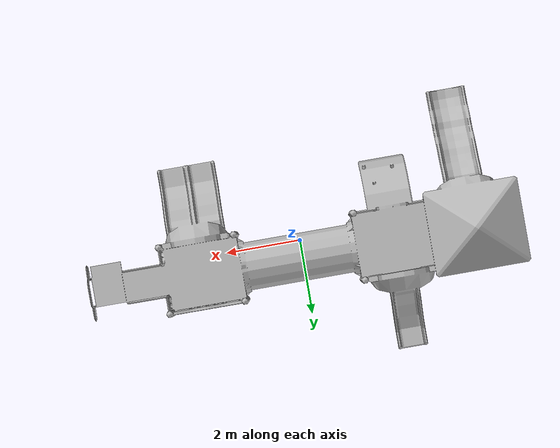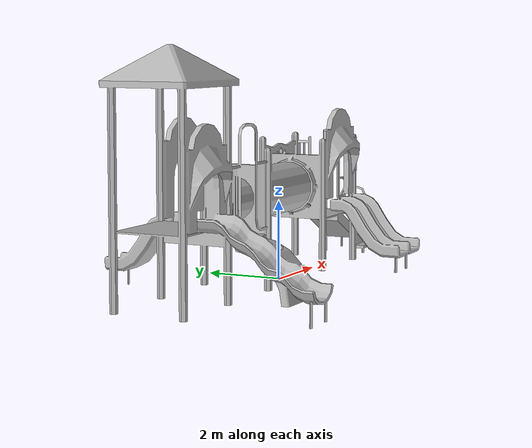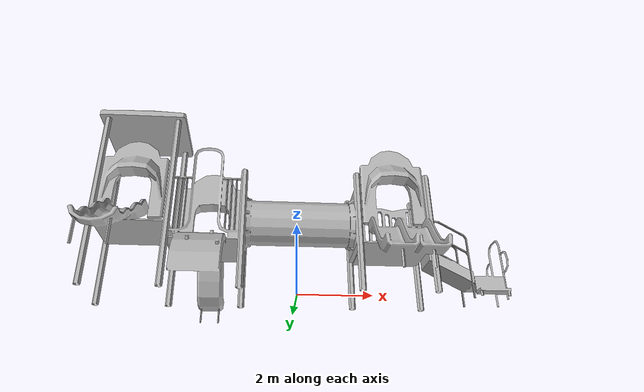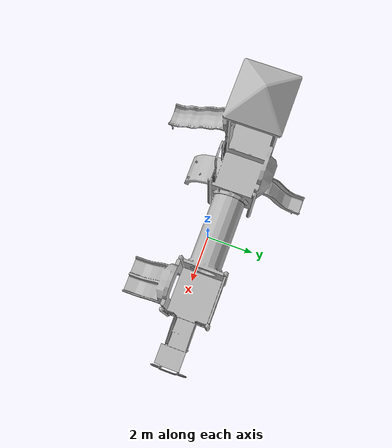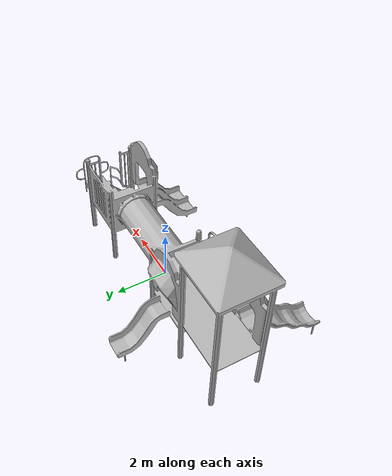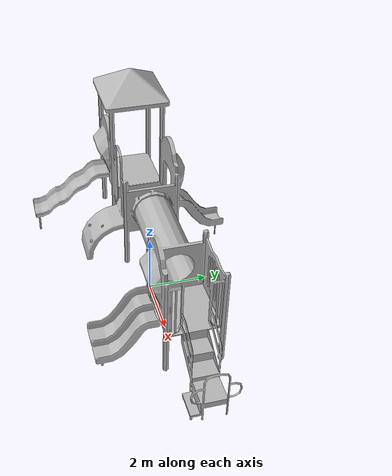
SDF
<?xml version="1.0" ?>
<sdf version="1.6">
  <model name="playground">
    <static>true</static>
    <link name="link">
      <collision name="collision">
        <geometry>
          <mesh>
            <uri>model://playground/meshes/playground.dae</uri>
          </mesh>
        </geometry>
      </collision>
      <visual name="visual">
        <geometry>
          <mesh>
            <uri>model://playground/meshes/playground.dae</uri>
          </mesh>
        </geometry>
      </visual>
    </link>
  </model>
</sdf>
